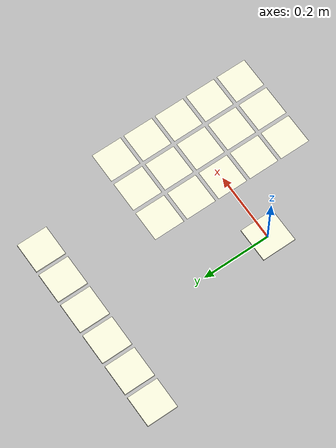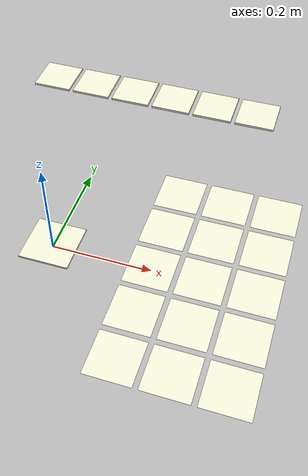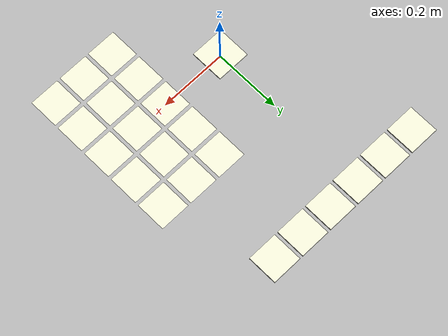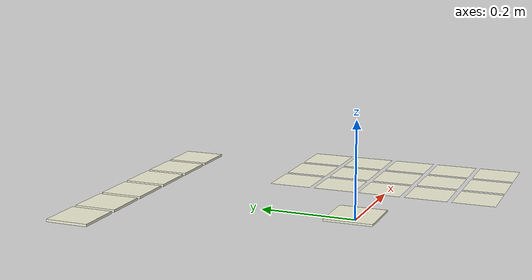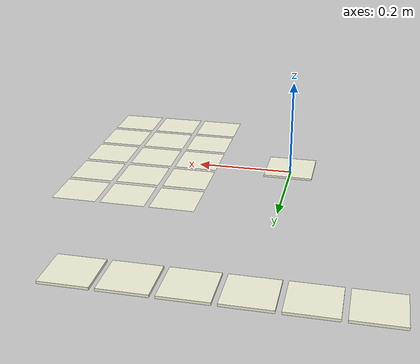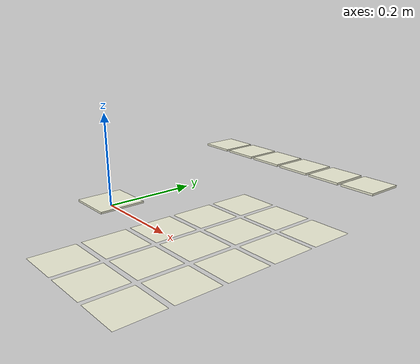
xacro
<?xml version="1.0" ?>
<robot xmlns:xacro="http://www.ros.org/wiki/xacro" name="tactile_senosr">

  <xacro:arg name="use_gazebo_control_plugin" default="1" />
  <xacro:arg name="use_gazebo_ft_plugin" default="1" />
  <xacro:arg name="use_gazebo_contact_plugin" default="1" />
  <xacro:arg name="make_selftest" default="1" />

  <!-- density of the velostat sensor foil: about 1000 kg / m^3 -->
  <xacro:property name="foil_density" value="1000.0" />

  <xacro:macro name="tactile_sensor_joint_state_controller">
    <!-- optional joint_state controller plugin -->
    <xacro:if value="$(arg use_gazebo_control_plugin)" >
      <gazebo>
        <plugin name="tactile_sensor_gazebo_ros_control" filename="libgazebo_ros_control.so">
          <robotParam>robot_description</robotParam> <!-- URDF name on param server -->
          <robotSimType>gazebo_ros_control/DefaultRobotHWSim</robotSimType>
          <legacyModeNS>true</legacyModeNS>
        </plugin>
      </gazebo>
    </xacro:if>
  </xacro:macro>

  <xacro:macro name="tactile_sensor_cell" params="parent name sx sy sz d_sz border xpos ypos zpos" >
    <link name="${name}_sensor_cell">
      <inertial>
        <origin xyz="0 0 0" />
        <mass value="${foil_density*sx*sy*sz}" />
        <inertia  ixx="0.00003" ixy="0" ixz="0" iyy="0.00003" iyz="0" izz="0.0001" />
      </inertial>
      <visual>
        <origin xyz="0 0 0" rpy="0 0 0" />
        <material name="${name}_sensor_surface_material" >
          <color rgba="0.95 0.95 0.85 1.0" />
        </material>
        <geometry>
          <box size="${sx-border} ${sy-border} ${sz-border}" />
        </geometry>
      </visual>
      <collision>
        <origin xyz="0 0 0" rpy="0 0 0" />
        <geometry>
          <box size="${sx-border} ${sy-border} ${sz-border}" />
        </geometry>
      </collision>
    </link>

    <gazebo reference="${name}_sensor_cell">
      <!-- todo: make the material rather soft and allow interpenetration -->
      <material>Gazebo/Silver</material>
      <turnGravityOff>false</turnGravityOff>
      <selfCollide>true</selfCollide>
      <mu1>0.2</mu1>
      <mu2>0.2</mu2>
      <kp>1000000.0</kp>
      <kd>1.0</kd>
    </gazebo>

    <joint name="${name}_sensor_joint" type="prismatic">
      <parent link="${parent}" />
      <child  link="${name}_sensor_cell" />
      <axis xyz="0 0 1" rpy="0 0 0" />
        <origin xyz="${xpos} ${ypos} ${zpos}" rpy="0 0 0" />
      <limit lower="-${d_sz}" upper="0.0" effort="1000" velocity="1" />
    </joint>

    <transmission name="${name}_sensor_joint_transmission">
      <type>transmission_interface/SimpleTransmission</type>
      <joint name="${name}_sensor_joint" >
        <hardwareInterface>hardware_interface/EffortJointInterface</hardwareInterface>
      </joint>
      <actuator name="${name}_sensor_joint_motor" >
        <hardwareInterface>hardware_interface/EffortJointInterface</hardwareInterface>
        <mechanicalReduction>1</mechanicalReduction>
      </actuator>
    </transmission>

    <!-- contact sensor -->
    <xacro:if value="$(arg use_gazebo_contact_plugin)" >
    <gazebo reference="${name}_sensor_cell">
      <sensor type="contact" name="${name}_sensor_cell/contact_sensor">
        <update_rate>1000.0</update_rate>
        <always_on>1</always_on>
        <contact>
          <collision>${name}_sensor_cell_collision</collision>
          <topic>${name}_sensor_cell/link_contact_gztopic</topic>
        </contact>
        <plugin name="gazebo_ros_bumper_controller" filename="libgazebo_ros_bumper.so">
          <alwaysOn>true</alwaysOn>
          <updateRate>101.0</updateRate>
          <bumperTopicName>${name}_sensor_cell/contact</bumperTopicName>
          <frameName>${name}_sensor_cell</frameName>
        </plugin>
      </sensor>
    </gazebo>
    </xacro:if>

    <!-- gazebo force/torque sensor plugin -->
    <xacro:if value="$(arg use_gazebo_ft_plugin)" >
    <gazebo>
      <plugin name="${name}_sensor_cell_ft_sensor" filename="libgazebo_ros_ft_sensor.so">
      <updateRate>80.0</updateRate>
      <topicName>${name}_sensor_cell/wrench</topicName>
      <jointName>${name}_sensor_joint</jointName>
      <robotNamespace></robotNamespace>
      </plugin>
    </gazebo>
    </xacro:if>

    <gazebo reference="${name}_sensor_joint">
      <provideFeedback>true</provideFeedback>
    </gazebo>

  </xacro:macro>

  <xacro:macro name="tactile_sensor_array" params="parent name nx sx sy sz d_sz border xpos ypos zpos">

    <!-- create sensor cell $nx -->
    <xacro:tactile_sensor_cell name="${name}_${nx-1}"
           parent="world" sx="${sx}" sy="${sy}" sz="${sz}" d_sz="${d_sz}" border="${border}"
           xpos="${xpos+(nx-1)*sx}" ypos="${ypos}" zpos="${zpos}" >
    </xacro:tactile_sensor_cell>

    <!-- recursion for $nx-1 -->
    <xacro:if value="${nx > 1}">
      <xacro:tactile_sensor_array
             parent="world" name="${name}" nx="${nx-1}"
             sx="${sx}" sy="${sy}" sz="${sz}" d_sz="${d_sz}" border="${border}"
             xpos="${xpos}" ypos="${ypos}" zpos="${zpos}" >
      </xacro:tactile_sensor_array >
    </xacro:if>
  </xacro:macro>

  <xacro:macro name="tactile_sensor_matrix" params="parent name ny nx sx sy sz d_sz border xpos ypos zpos">

    <!-- create 1D-array at y-position ${ny*sy} -->
    <xacro:tactile_sensor_array name="${name}_${ny-1}"
           parent="world" nx="${nx}" sx="${sx}" sy="${sy}" sz="${sz}" d_sz="${d_sz}" border="${border}"
           xpos="${xpos}" ypos="${ypos+(ny-1)*sy}" zpos="${zpos}" >
    </xacro:tactile_sensor_array>

    <!-- recursion for $ny-1 -->
    <xacro:if value="${ny > 1}">
      <xacro:tactile_sensor_matrix
             parent="world" name="${name}" ny="${ny-1}" nx="${nx}"
             sx="${sx}" sy="${sy}" sz="${sz}" d_sz="${d_sz}" border="${border}"
             xpos="${xpos}" ypos="${ypos}" zpos="${zpos}" >
      </xacro:tactile_sensor_matrix>
    </xacro:if>
  </xacro:macro>

  <!-- selftest... three sensors mounted to world -->
  <xacro:if value="$(arg make_selftest)" >

    <link name="world" />

    <xacro:tactile_sensor_joint_state_controller/>

    <!-- by default, the sensor falls down and then also contacts the ground_plane :-) -->
    <xacro:tactile_sensor_cell name="tactile1" parent="world"
                sx="0.1" sy="0.1" sz="0.004" d_sz="0.001" border="0.0"
                xpos="0" ypos="0" zpos="0.01" >
    </xacro:tactile_sensor_cell>

    <xacro:tactile_sensor_array name="tactile_array1" parent="world" nx="6"
                sx="0.1" sy="0.1" sz="0.005" d_sz="0.001" border="0.01"
                xpos="-0.2" ypos="0.5" zpos="0.01" >
    </xacro:tactile_sensor_array>

    <xacro:tactile_sensor_matrix name="tactile_matrix1" parent="world" ny="5" nx="3"
                sx="0.1" sy="0.1" sz="0.01" d_sz="0.001" border="0.01"
                xpos="0.2" ypos="-0.2" zpos="0.01" >
    </xacro:tactile_sensor_matrix>

  </xacro:if>

</robot>
